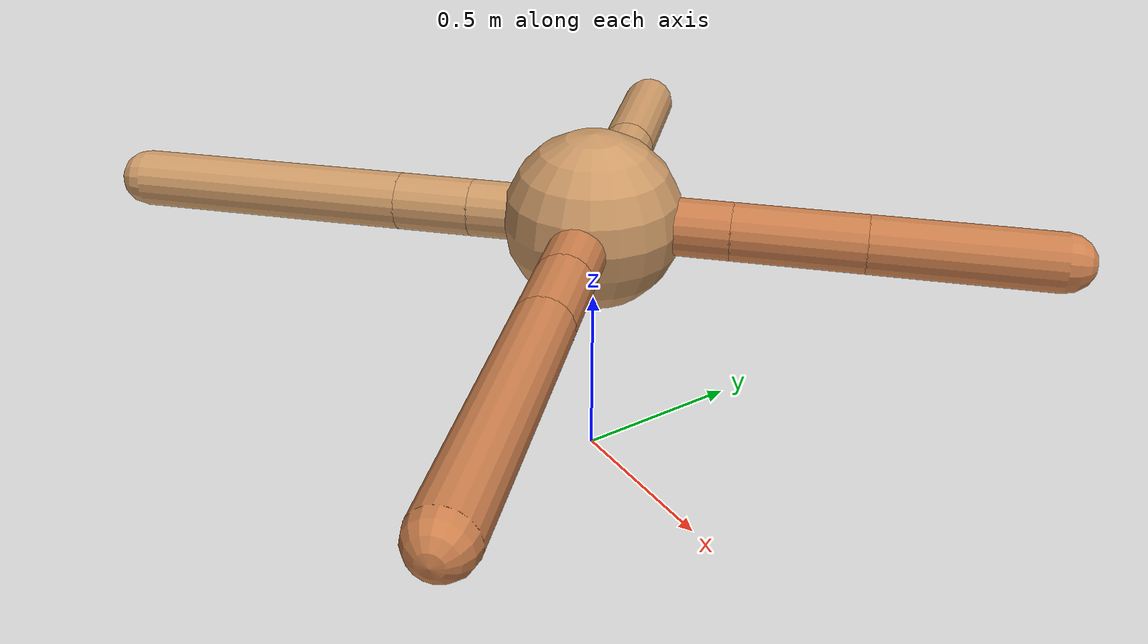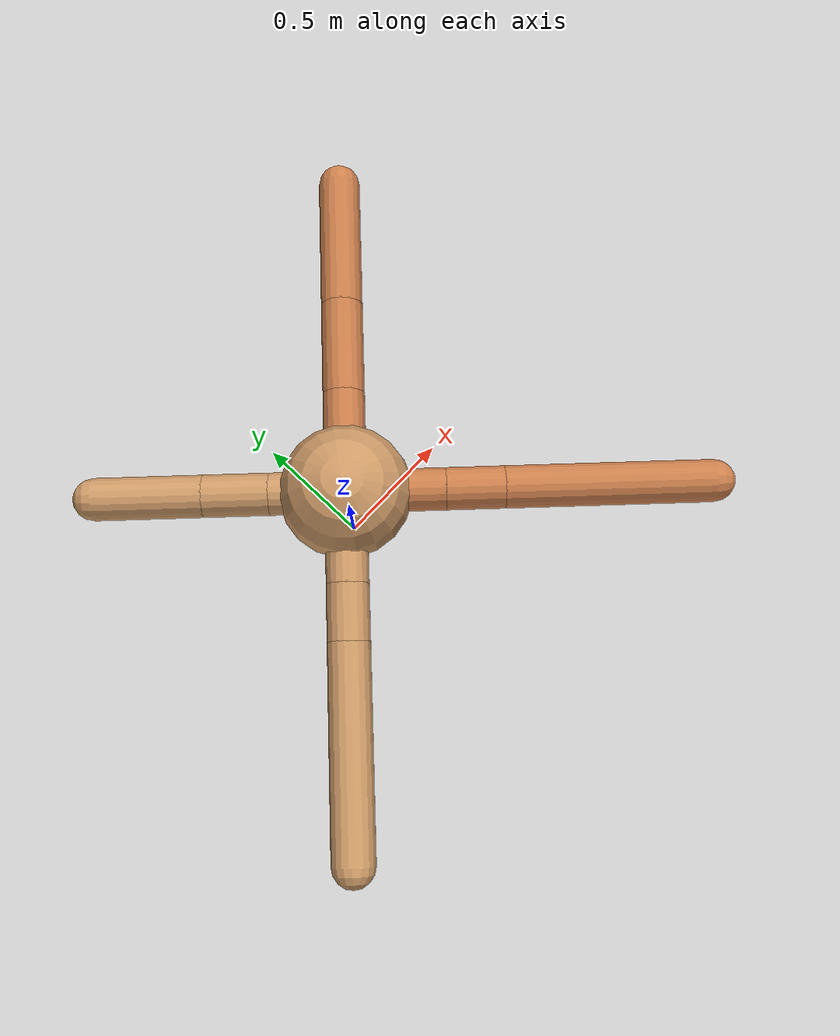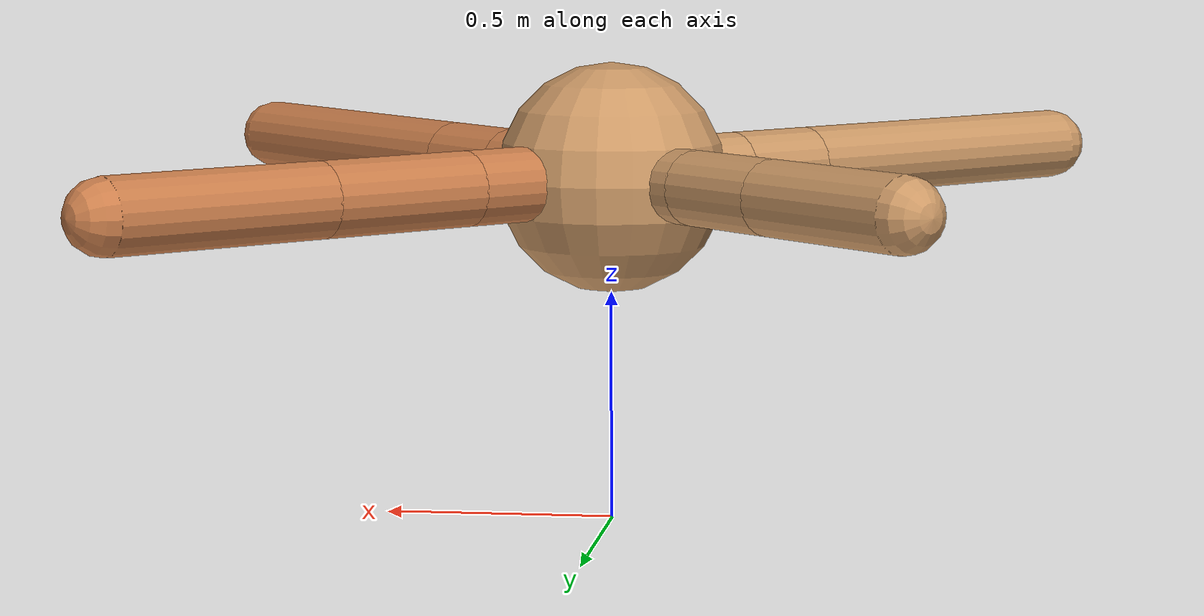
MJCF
<mujoco model="ant">
  <compiler angle="degree" coordinate="local" inertiafromgeom="true" />
  <option integrator="RK4" timestep="0.01" />
  <custom>
    <numeric data="0.0 0.0 0.55 1.0 0.0 0.0 0.0 0.0 1.0 0.0 -1.0 0.0 -1.0 0.0 1.0" name="init_qpos" />
  </custom>
  <default>
    <joint armature="1" damping="1" limited="true" />
    <geom conaffinity="0" condim="3" density="5.0" friction="1.5 0.1 0.1" margin="0.01" rgba="0.8 0.6 0.4 1" />
  </default>
  <worldbody>
    <body name="torso" pos="0 0 0.75">
      <geom name="torso_geom" pos="0 0 0" size="0.25" type="sphere" />

      <body name="front_left_leg" pos="0 0 0">
        <geom fromto="0.0 0.0 0.0 0.27002802345980914 0.27002802345980914 0.0" name="aux_1_geom" size="0.08" type="capsule" rgba=".8 .5 .3 1" />
        <body name="aux_1" pos="0.27002802345980914 0.27002802345980914 0.0">
          <joint axis="0 0 1" name="hip_1" pos="0.0 0.0 0.0" range="-40 40" type="hinge" />
          <geom fromto="0.0 0.0 0.0 0.2535694030467212 0.2535694030467212 0.0" name="left_leg_geom" size="0.08" type="capsule" rgba=".8 .5 .3 1" />
          <body pos="0.2535694030467212 0.2535694030467212 0.0" name="front_left_foot">
            <joint axis="-1 1 0" name="ankle_1" pos="0.0 0.0 0.0" range="30 100" type="hinge" />
            <geom fromto="0.0 0.0 0.0 0.35409977678793103 0.35409977678793103 0.0" name="left_ankle_geom" size="0.08" type="capsule" rgba=".8 .5 .3 1" />
          </body>
        </body>
      </body>
      <body name="front_right_leg" pos="0 0 0">
        <geom fromto="0.0 0.0 0.0 -0.2000361092710702 0.2000361092710702 0.0" name="aux_2_geom" size="0.08" type="capsule" />
        <body name="aux_2" pos="-0.2000361092710702 0.2000361092710702 0.0">
          <joint axis="0 0 1" name="hip_2" pos="0.0 0.0 0.0" range="-40 40" type="hinge" />
          <geom fromto="0.0 0.0 0.0 -0.17401825850588745 0.17401825850588745 0.0" name="right_leg_geom" size="0.08" type="capsule" />
          <body pos="-0.17401825850588745 0.17401825850588745 0.0" name="front_right_foot">
            <joint axis="1 1 0" name="ankle_2" pos="0.0 0.0 0.0" range="-100 -30" type="hinge" />
            <geom fromto="0.0 0.0 0.0 -0.2860549685622387 0.2860549685622387 0.0" name="right_ankle_geom" size="0.08" type="capsule" />
          </body>
        </body>
      </body>
      <body name="left_back_leg" pos="0 0 0">
        <geom fromto="0.0 0.0 0.0 -0.2445521488930069 -0.2445521488930069 0.0" name="aux_3_geom" size="0.08" type="capsule" />
        <body name="aux_3" pos="-0.2445521488930069 -0.2445521488930069 0.0">
          <joint axis="0 0 1" name="hip_3" pos="0.0 0.0 0.0" range="-40 40" type="hinge" />
          <geom fromto="0.0 0.0 0.0 -0.14939429985370575 -0.14939429985370575 0.0" name="back_leg_geom" size="0.08" type="capsule" />
          <body pos="-0.14939429985370575 -0.14939429985370575 0.0" name="left_back_foot">
            <joint axis="-1 1 0" name="ankle_3" pos="0.0 0.0 0.0" range="-100 -30" type="hinge" />
            <geom fromto="0.0 0.0 0.0 -0.5494761415487843 -0.5494761415487843 0.0" name="third_ankle_geom" size="0.08" type="capsule" />
          </body>
        </body>
      </body>
      <body name="right_back_leg" pos="0 0 0">
        <geom fromto="0.0 0.0 0.0 0.263884947171458 -0.263884947171458 0.0" name="aux_4_geom" size="0.08" type="capsule" rgba=".8 .5 .3 1" />
        <body name="aux_4" pos="0.263884947171458 -0.263884947171458 0.0">
          <joint axis="0 0 1" name="hip_4" pos="0.0 0.0 0.0" range="-40 40" type="hinge" />
          <geom fromto="0.0 0.0 0.0 0.1552907793523632 -0.1552907793523632 0.0" name="rightback_leg_geom" size="0.08" type="capsule" rgba=".8 .5 .3 1" />
          <body pos="0.1552907793523632 -0.1552907793523632 0.0" name="right_back_foot">
            <joint axis="1 1 0" name="ankle_4" pos="0.0 0.0 0.0" range="30 100" type="hinge" />
            <geom fromto="0.0 0.0 0.0 0.5516363321728263 -0.5516363321728263 0.0" name="fourth_ankle_geom" size="0.08" type="capsule" rgba=".8 .5 .3 1" />
          </body>
        </body>
      </body>
    </body>
  </worldbody>
  <actuator>
    <motor ctrllimited="true" ctrlrange="-1.0 1.0" joint="hip_4" gear="150" />
    <motor ctrllimited="true" ctrlrange="-1.0 1.0" joint="ankle_4" gear="150" />
    <motor ctrllimited="true" ctrlrange="-1.0 1.0" joint="hip_1" gear="150" />
    <motor ctrllimited="true" ctrlrange="-1.0 1.0" joint="ankle_1" gear="150" />
    <motor ctrllimited="true" ctrlrange="-1.0 1.0" joint="hip_2" gear="150" />
    <motor ctrllimited="true" ctrlrange="-1.0 1.0" joint="ankle_2" gear="150" />
    <motor ctrllimited="true" ctrlrange="-1.0 1.0" joint="hip_3" gear="150" />
    <motor ctrllimited="true" ctrlrange="-1.0 1.0" joint="ankle_3" gear="150" />
  </actuator>
</mujoco>
